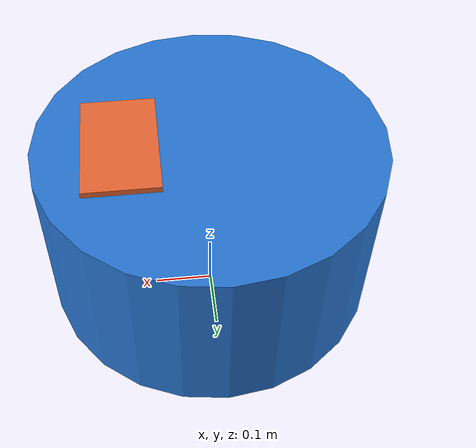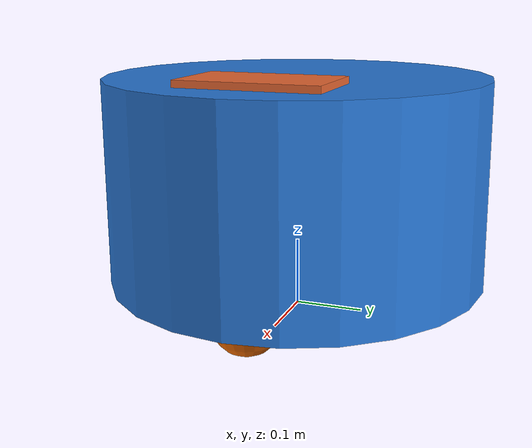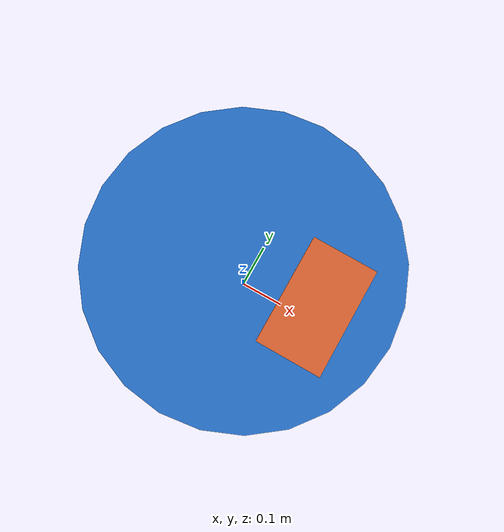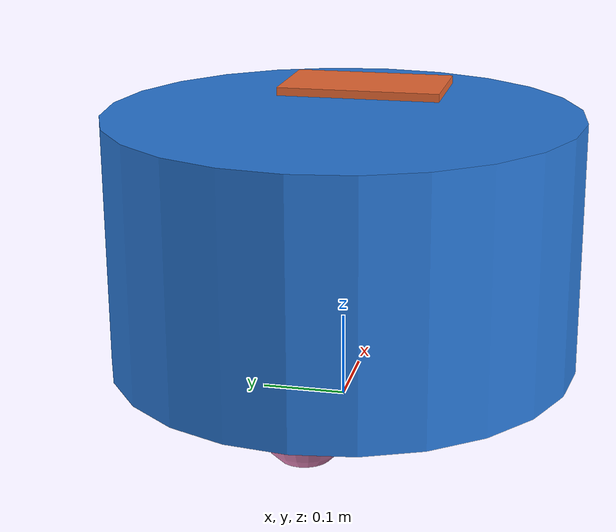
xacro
<?xml version="1.0"?>
<robot name="swarmx_amr" xmlns:xacro="http://www.ros.org/wiki/xacro">
  <xacro:arg name="namespace" default="robot1"/>
  <xacro:arg name="lidar_rate" default="10"/>
  <!-- ground_truth_odom: odom->base_footprint from the simulator's true pose (no wheel slip drift).
       Set false to use drifting wheel odometry (realistic; requires AMCL / slam_toolbox). -->
  <xacro:arg name="ground_truth_odom" default="true"/>
  <xacro:property name="ns" value="$(arg namespace)"/>

  <xacro:property name="base_r" value="0.28"/>
  <xacro:property name="base_h" value="0.30"/>
  <xacro:property name="wheel_r" value="0.05"/>
  <xacro:property name="wheel_w" value="0.03"/>
  <xacro:property name="wheel_sep" value="0.40"/>
  <xacro:property name="base_z" value="0.05"/>

  <xacro:macro name="cyl_inertia" params="m r h">
    <inertia ixx="${m*(3*r*r+h*h)/12}" ixy="0" ixz="0" iyy="${m*(3*r*r+h*h)/12}" iyz="0" izz="${m*r*r/2}"/>
  </xacro:macro>

  <link name="base_footprint"/>

  <link name="base_link">
    <visual>
      <origin xyz="0 0 ${base_h/2}"/>
      <geometry><cylinder radius="${base_r}" length="${base_h}"/></geometry>
      <material name="swarmx_blue"><color rgba="0.16 0.47 0.84 1"/></material>
    </visual>
    <collision>
      <origin xyz="0 0 ${base_h/2}"/>
      <geometry><cylinder radius="${base_r}" length="${base_h}"/></geometry>
    </collision>
    <inertial>
      <origin xyz="0 0 ${base_h/2}"/>
      <mass value="12.0"/>
      <xacro:cyl_inertia m="12.0" r="${base_r}" h="${base_h}"/>
    </inertial>
  </link>
  <joint name="base_joint" type="fixed">
    <parent link="base_footprint"/><child link="base_link"/>
    <origin xyz="0 0 ${base_z}"/>
  </joint>

  <!-- load deck marker so heading is visible in Gazebo/RViz -->
  <link name="deck_link">
    <visual>
      <origin xyz="0.14 0 0"/>
      <geometry><box size="0.12 0.2 0.01"/></geometry>
      <material name="swarmx_orange"><color rgba="0.92 0.41 0.20 1"/></material>
    </visual>
  </link>
  <joint name="deck_joint" type="fixed">
    <parent link="base_link"/><child link="deck_link"/>
    <origin xyz="0 0 ${base_h + 0.005}"/>
  </joint>

  <xacro:macro name="wheel" params="side y">
    <link name="${side}_wheel">
      <visual>
        <origin rpy="${pi/2} 0 0"/>
        <geometry><cylinder radius="${wheel_r}" length="${wheel_w}"/></geometry>
        <material name="swarmx_dark"><color rgba="0.15 0.15 0.15 1"/></material>
      </visual>
      <collision>
        <origin rpy="${pi/2} 0 0"/>
        <geometry><cylinder radius="${wheel_r}" length="${wheel_w}"/></geometry>
      </collision>
      <inertial>
        <mass value="0.5"/>
        <inertia ixx="0.0004" ixy="0" ixz="0" iyy="0.0006" iyz="0" izz="0.0004"/>
      </inertial>
    </link>
    <joint name="${side}_wheel_joint" type="continuous">
      <parent link="base_link"/><child link="${side}_wheel"/>
      <origin xyz="0 ${y} 0"/>
      <axis xyz="0 1 0"/>
    </joint>
  </xacro:macro>
  <xacro:wheel side="left" y="${wheel_sep/2}"/>
  <xacro:wheel side="right" y="${-wheel_sep/2}"/>

  <xacro:macro name="caster" params="name x">
    <link name="${name}_caster">
      <visual><geometry><sphere radius="${wheel_r - 0.001}"/></geometry></visual>
      <collision><geometry><sphere radius="${wheel_r - 0.001}"/></geometry></collision>
      <inertial><mass value="0.1"/><inertia ixx="0.0001" ixy="0" ixz="0" iyy="0.0001" iyz="0" izz="0.0001"/></inertial>
    </link>
    <joint name="${name}_caster_joint" type="fixed">
      <parent link="base_link"/><child link="${name}_caster"/>
      <origin xyz="${x} 0 0.0"/>
    </joint>
    <gazebo reference="${name}_caster">
      <collision><surface><friction><ode><mu>0.0</mu><mu2>0.0</mu2></ode></friction></surface></collision>
    </gazebo>
  </xacro:macro>
  <xacro:caster name="front" x="0.2"/>
  <xacro:caster name="rear" x="-0.2"/>

  <link name="lidar_link">
    <inertial><mass value="0.2"/><inertia ixx="0.0001" ixy="0" ixz="0" iyy="0.0001" iyz="0" izz="0.0001"/></inertial>
  </link>
  <!-- lidar sits inside the top of the body: the scan plane (z ~0.27 m) cuts through other
       robots' bodies so they are visible to each other; self-returns fall below min range -->
  <joint name="lidar_joint" type="fixed">
    <parent link="base_link"/><child link="lidar_link"/>
    <origin xyz="0 0 ${base_h - 0.08}"/>
  </joint>

  <link name="imu_link"/>
  <joint name="imu_joint" type="fixed">
    <parent link="base_link"/><child link="imu_link"/>
    <origin xyz="0 0 0.05"/>
  </joint>

  <!-- ============================ Gazebo Harmonic ============================ -->
  <gazebo>
    <plugin filename="gz-sim-diff-drive-system" name="gz::sim::systems::DiffDrive">
      <left_joint>left_wheel_joint</left_joint>
      <right_joint>right_wheel_joint</right_joint>
      <wheel_separation>${wheel_sep}</wheel_separation>
      <wheel_radius>${wheel_r}</wheel_radius>
      <max_linear_acceleration>1.5</max_linear_acceleration>
      <min_linear_acceleration>-1.5</min_linear_acceleration>
      <max_angular_acceleration>4.0</max_angular_acceleration>
      <min_angular_acceleration>-4.0</min_angular_acceleration>
      <max_linear_velocity>1.0</max_linear_velocity>
      <min_linear_velocity>-0.5</min_linear_velocity>
      <max_angular_velocity>2.5</max_angular_velocity>
      <min_angular_velocity>-2.5</min_angular_velocity>
      <topic>/${ns}/cmd_vel</topic>
      <xacro:if value="$(arg ground_truth_odom)">
        <odom_topic>/${ns}/wheel_odom</odom_topic>
        <tf_topic>/${ns}/wheel_tf</tf_topic>
      </xacro:if>
      <xacro:unless value="$(arg ground_truth_odom)">
        <odom_topic>/${ns}/odom</odom_topic>
        <tf_topic>/${ns}/tf</tf_topic>
      </xacro:unless>
      <frame_id>odom</frame_id>
      <child_frame_id>base_footprint</child_frame_id>
      <odom_publish_frequency>30</odom_publish_frequency>
    </plugin>
    <xacro:if value="$(arg ground_truth_odom)">
      <plugin filename="gz-sim-odometry-publisher-system" name="gz::sim::systems::OdometryPublisher">
        <odom_frame>odom</odom_frame>
        <robot_base_frame>base_footprint</robot_base_frame>
        <odom_publish_frequency>30</odom_publish_frequency>
        <odom_topic>/${ns}/odom</odom_topic>
        <tf_topic>/${ns}/tf</tf_topic>
        <dimensions>2</dimensions>
      </plugin>
    </xacro:if>
    <plugin filename="gz-sim-joint-state-publisher-system" name="gz::sim::systems::JointStatePublisher">
      <topic>/${ns}/joint_states</topic>
    </plugin>
  </gazebo>

  <gazebo reference="lidar_link">
    <sensor name="lidar" type="gpu_lidar">
      <topic>/${ns}/scan</topic>
      <gz_frame_id>lidar_link</gz_frame_id>
      <update_rate>$(arg lidar_rate)</update_rate>
      <always_on>true</always_on>
      <visualize>false</visualize>
      <lidar>
        <scan>
          <horizontal><samples>360</samples><resolution>1</resolution><min_angle>-3.14159</min_angle><max_angle>3.14159</max_angle></horizontal>
        </scan>
        <range><min>0.32</min><max>12.0</max><resolution>0.01</resolution></range>
        <noise><type>gaussian</type><mean>0.0</mean><stddev>0.01</stddev></noise>
      </lidar>
    </sensor>
  </gazebo>

  <gazebo reference="imu_link">
    <sensor name="imu" type="imu">
      <topic>/${ns}/imu</topic>
      <gz_frame_id>imu_link</gz_frame_id>
      <update_rate>50</update_rate>
      <always_on>true</always_on>
    </sensor>
  </gazebo>
</robot>
